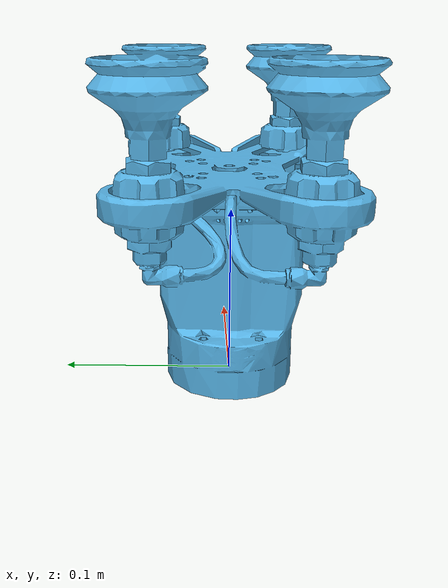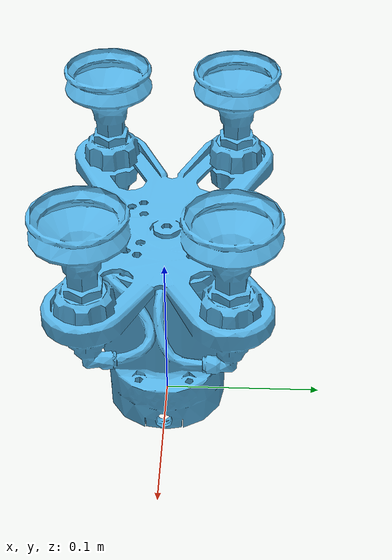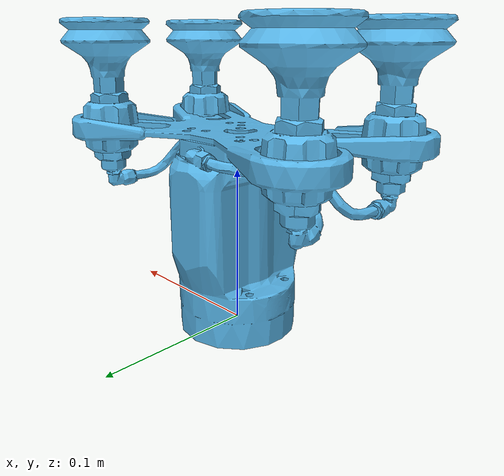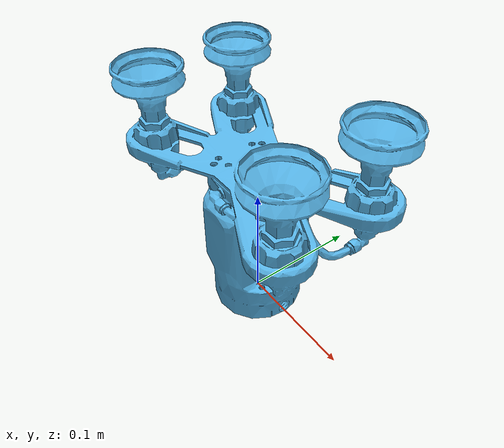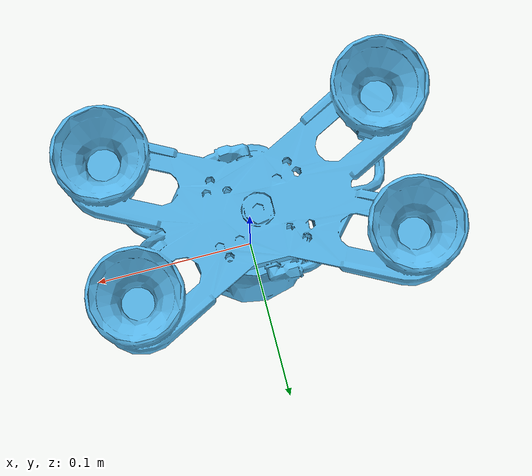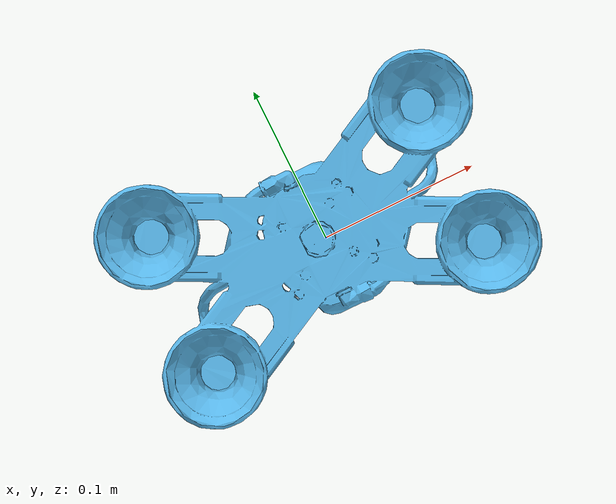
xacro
<?xml version="1.0"?>
<robot xmlns:xacro="http://ros.org/wiki/xacro" name="load_runner">
    <xacro:arg name="gripper_model" default="epick_4cups"/>
    <xacro:arg name="prefix" default=""/>

    <xacro:include filename="$(find robotiq_epick_vaccum_gripper_description)/urdf/epick_gripper.urdf.xacro"/>

    <link name="base_link"/>
    <xacro:insert_gripper prefix="$(arg prefix)" parent="base_link">
        <origin xyz="0 0 0" rpy="0 0 0"/>
    </xacro:insert_gripper>
</robot>

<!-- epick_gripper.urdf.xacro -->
<robot xmlns:xacro="http://www.ros.org/wiki/xacro">
    <xacro:macro name="insert_gripper" params="prefix parent *origin">
        <link name="${prefix}gripper_link">
            <visual>
                <origin xyz="0 0 0" rpy="0 0 0"/>
                <geometry>
                    <mesh filename="package://robotiq_epick_vaccum_gripper_description/meshes/visual/epick_4cups.dae" scale="1 1 1"/>
                </geometry>
            </visual>
            <collision>
                <origin xyz="0 0 0" rpy="0 0 0"/>
                <geometry>
                    <mesh filename="package://robotiq_epick_vaccum_gripper_description/meshes/collision/epick_4cups.stl" scale="1 1 1"/>
                </geometry>
            </collision>
            <inertial>
                <origin xyz="0.010 0.000 0.070" rpy="0 0 0"/>
                <mass value="67.084"/>
                <inertia ixx="1.067955" ixy="0.010608" ixz="-0.044928" iyy="2.497383" iyz="-0.000028" izz="3.217104"/>
            </inertial>
        </link>

        <joint name="gripper_mount_fixed" type="fixed">
            <parent link="${parent}"/>
            <child link="${prefix}gripper_link"/>
            <xacro:insert_block name="origin"/>
        </joint>

        <link name="${prefix}gripper_cup1"/>
        <joint name="${prefix}gripper_cup1_fixed_joint" type="fixed">
            <parent link="${prefix}gripper_link"/>
            <child link="${prefix}gripper_cup1"/>
            <origin xyz="-0.08455 -0.03901 0.1915" rpy="0 0 0"/>
        </joint>

        <link name="${prefix}gripper_cup2"/>
        <joint name="${prefix}gripper_cup2_fixed_joint" type="fixed">
            <parent link="${prefix}gripper_link"/>
            <child link="${prefix}gripper_cup2"/>
            <origin xyz="0.07494 -0.03901 0.1915" rpy="0 0 0"/>
        </joint>

        <link name="${prefix}gripper_cup3"/>
        <joint name="${prefix}gripper_cup3_fixed_joint" type="fixed">
            <parent link="${prefix}gripper_link"/>
            <child link="${prefix}gripper_cup3"/>
            <origin xyz="-0.084550 0.04226 0.1915" rpy="0 0 0"/>
        </joint>

        <link name="${prefix}gripper_cup4"/>
        <joint name="${prefix}gripper_cup4_fixed_joint" type="fixed">
            <parent link="${prefix}gripper_link"/>
            <child link="${prefix}gripper_cup4"/>
            <origin xyz="0.07494 0.04226 0.1915" rpy="0 0 0"/>
        </joint>

        <link name="${prefix}gripper_tcp"/>
        <joint name="${prefix}gripper_tcp_fixed_joint" type="fixed">
            <parent link="${prefix}gripper_link"/>
            <child link="${prefix}gripper_tcp"/>
            <origin xyz="0 0 0.1915" rpy="0 0 0"/>
        </joint>
    </xacro:macro>
</robot>
